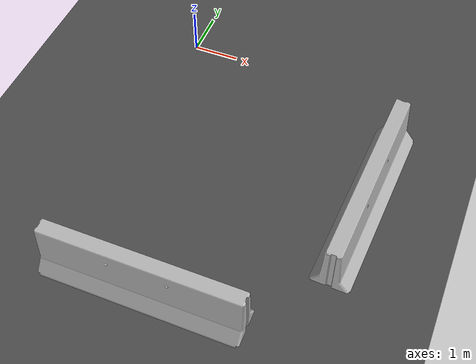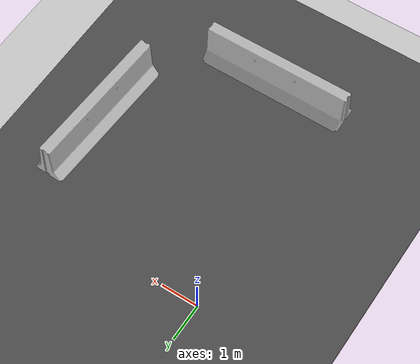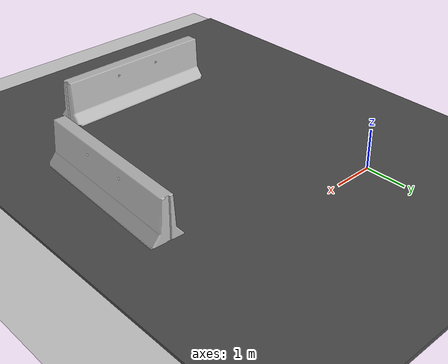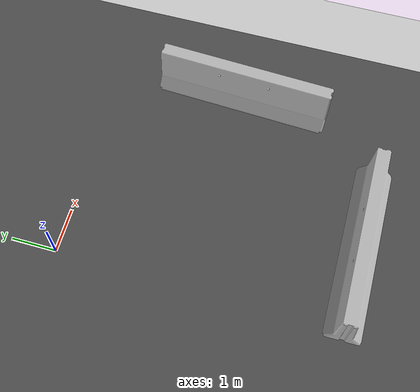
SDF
<sdf version="1.7">
 <world name="default">
  <model name="ground_plane">
   <static>1</static>
   <link name="link">
    <collision name="collision">
     <geometry><plane><normal>0 0 1</normal><size>100 100</size></plane></geometry>
     <surface>
      <contact><collide_bitmask>65535</collide_bitmask></contact>
      <friction><ode><mu>100</mu><mu2>50</mu2></ode></friction>
     </surface>
    </collision>
    <visual name="visual">
     <cast_shadows>0</cast_shadows>
     <geometry><plane><normal>0 0 1</normal><size>100 100</size></plane></geometry>
     <material>
      <script><uri>file://media/materials/scripts/gazebo.material</uri><name>Gazebo/Grey</name></script>
     </material>
    </visual>
   </link>
  </model>
  <model name="asphalt_plane">
   <static>1</static>
   <link name="link">
    <collision name="collision"><geometry><box><size>20 20 0.1</size></box></geometry></collision>
    <visual name="visual">
     <cast_shadows>0</cast_shadows>
     <geometry><box><size>20 20 0.1</size></box></geometry>
     <material>
      <script>
       <uri>model://asphalt_plane/materials/scripts</uri>
       <uri>model://asphalt_plane/materials/textures</uri>
       <name>vrc/asphalt</name>
      </script>
     </material>
    </visual>
   </link>
   <pose>-3.13023 0.98883 0 0 -0 0</pose>
  </model>
  <model name="jersey_barrier_0">
   <static>1</static>
   <link name="link">
    <visual name="visual">
     <geometry><mesh><uri>model://jersey_barrier/meshes/jersey_barrier.dae</uri></mesh></geometry>
    </visual>
    <collision name="upright">
     <pose>0 0 0.5715 0 -0 0</pose>
     <geometry><box><size>4.06542 0.3063 1.143</size></box></geometry>
    </collision>
    <collision name="base">
     <pose>0 0 0.032258 0 -0 0</pose>
     <geometry><box><size>4.06542 0.8107 0.064516</size></box></geometry>
    </collision>
    <collision name="base2">
     <pose>0 0 0.1 0 -0 0</pose>
     <geometry><box><size>4.06542 0.65 0.1</size></box></geometry>
    </collision>
    <collision name="base3">
     <pose>0 0 0.2 0 -0 0</pose>
     <geometry><box><size>4.06542 0.5 0.1</size></box></geometry>
    </collision>
    <collision name="left-angle">
     <pose>0 -0.224 0.2401 0.9 -0 0</pose>
     <geometry><box><size>4.06542 0.5 0.064516</size></box></geometry>
    </collision>
    <collision name="right-angle">
     <pose>0 0.224 0.2401 -0.9 0 0</pose>
     <geometry><box><size>4.06542 0.5 0.064516</size></box></geometry>
    </collision>
   </link>
   <pose>1.74869 -6.33802 0 0 -0 0</pose>
  </model>
  <model name="jersey_barrier_2">
   <static>1</static>
   <link name="link">
    <visual name="visual">
     <geometry><mesh><uri>model://jersey_barrier/meshes/jersey_barrier.dae</uri></mesh></geometry>
    </visual>
    <collision name="upright">
     <pose>0 0 0.5715 0 -0 0</pose>
     <geometry><box><size>4.06542 0.3063 1.143</size></box></geometry>
    </collision>
    <collision name="base">
     <pose>0 0 0.032258 0 -0 0</pose>
     <geometry><box><size>4.06542 0.8107 0.064516</size></box></geometry>
    </collision>
    <collision name="base2">
     <pose>0 0 0.1 0 -0 0</pose>
     <geometry><box><size>4.06542 0.65 0.1</size></box></geometry>
    </collision>
    <collision name="base3">
     <pose>0 0 0.2 0 -0 0</pose>
     <geometry><box><size>4.06542 0.5 0.1</size></box></geometry>
    </collision>
    <collision name="left-angle">
     <pose>0 -0.224 0.2401 0.9 -0 0</pose>
     <geometry><box><size>4.06542 0.5 0.064516</size></box></geometry>
    </collision>
    <collision name="right-angle">
     <pose>0 0.224 0.2401 -0.9 0 0</pose>
     <geometry><box><size>4.06542 0.5 0.064516</size></box></geometry>
    </collision>
   </link>
   <pose>4.95637 -2.95521 0 0 -0 1.52217</pose>
  </model>
 </world>
</sdf>
